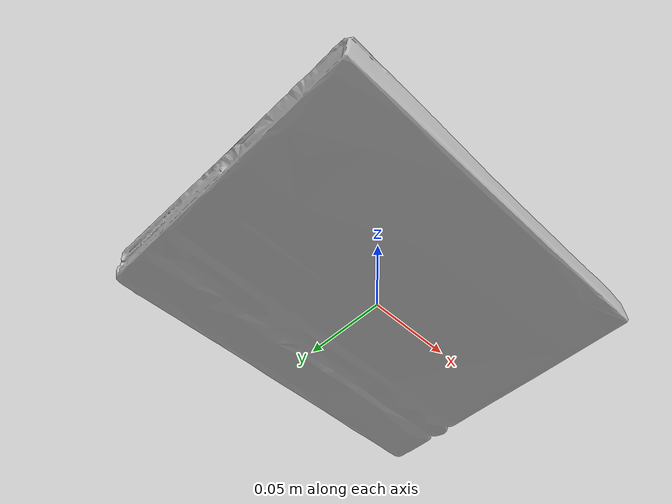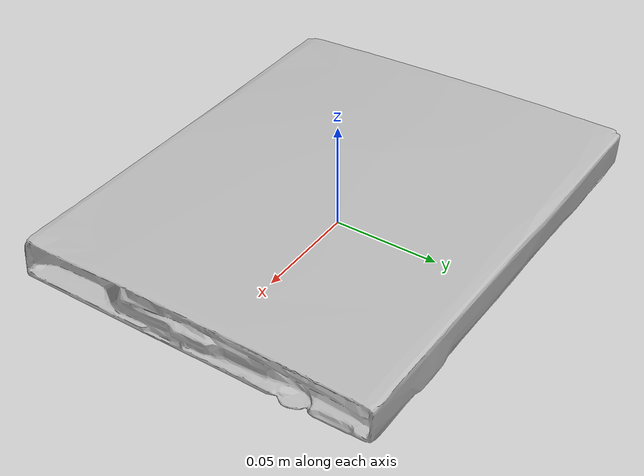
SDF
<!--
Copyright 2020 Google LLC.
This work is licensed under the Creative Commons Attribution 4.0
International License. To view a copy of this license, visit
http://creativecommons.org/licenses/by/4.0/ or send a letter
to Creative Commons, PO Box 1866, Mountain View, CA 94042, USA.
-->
<?xml version="1.0" ?>
<sdf version="1.6">
  <model name="Google_Cardboard_Original_package">
    <link name="link_0">
      <visual name="visual">
        <geometry>
          <mesh>
            <uri>meshes/model.obj</uri>
          </mesh>
        </geometry>
      </visual>
      <collision name="collision_0">
        <geometry>
          <mesh>
            <uri>meshes/model.obj</uri>
          </mesh>
        </geometry>
      </collision>
    </link>
  </model>
</sdf>
